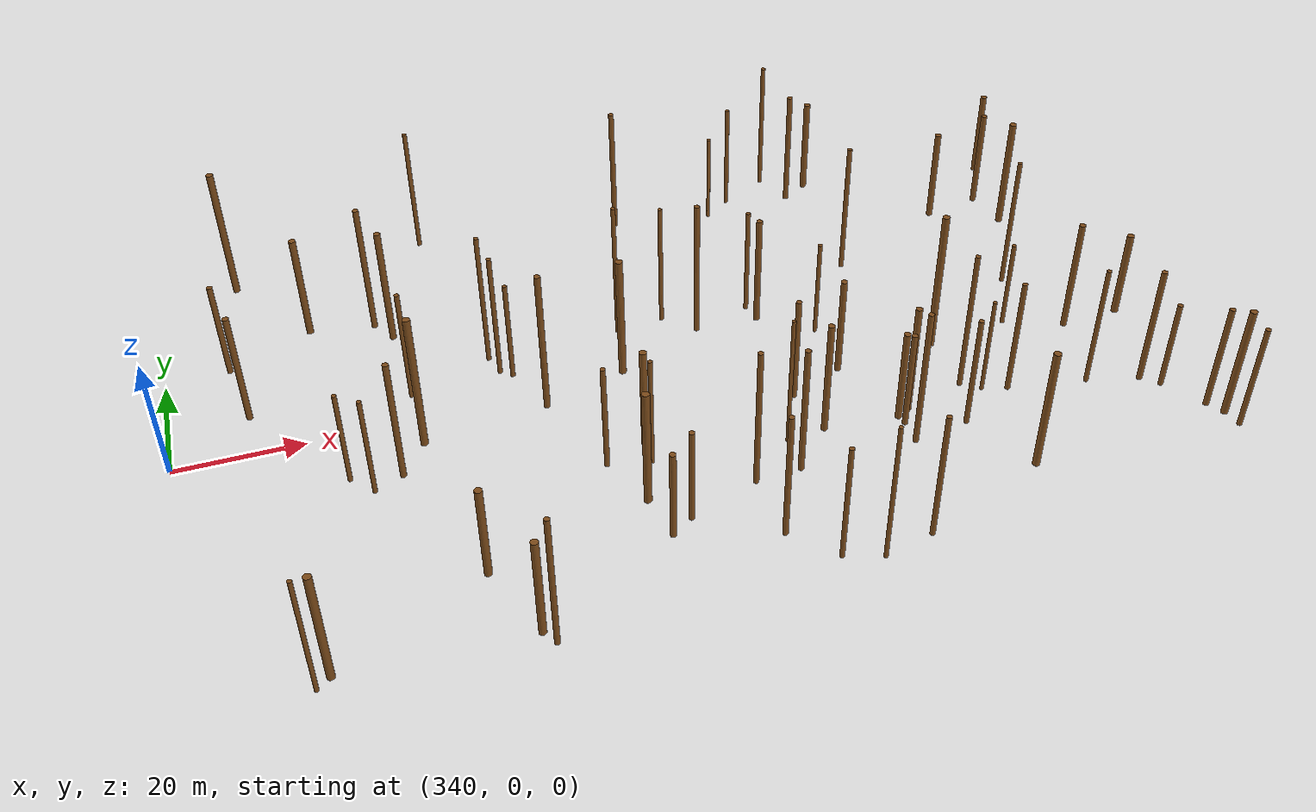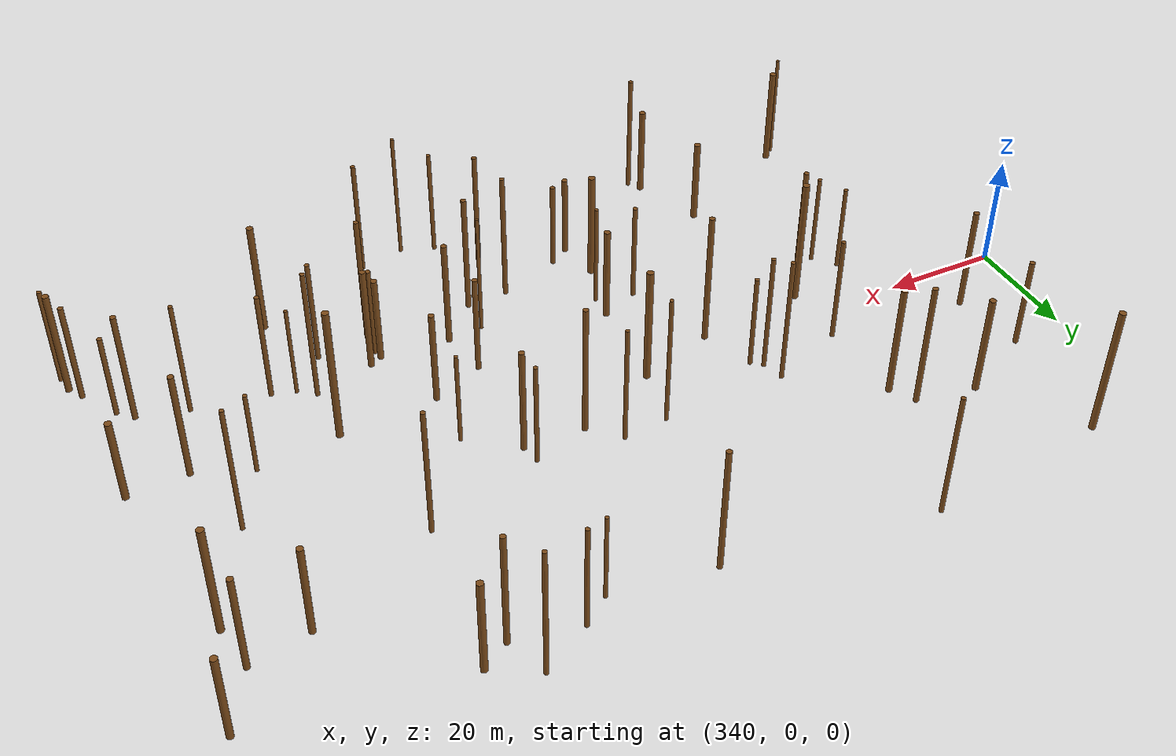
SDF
<sdf version="1.6">
 <world name="simple_forest">
  <include><uri>model://sun</uri></include>
  <model name="tree_2">
   <pose>427.7026014884177 -47.020278056192964 10.026776440516812 0 0 0</pose>
   <static>true</static>
   <link name="trunk">
    <collision name="collision">
     <geometry>
      <cylinder><radius>0.36559139244108096</radius><length>20.053552881033625</length></cylinder>
     </geometry>
    </collision>
    <visual name="visual">
     <geometry>
      <cylinder><radius>0.36559139244108096</radius><length>20.053552881033625</length></cylinder>
     </geometry>
     <material><ambient>0.5 0.3 0.1 1</ambient><diffuse>0.5 0.3 0.1 1</diffuse></material>
    </visual>
   </link>
  </model>
  <model name="tree_21">
   <pose>405.4065000889933 -28.067924084271667 10.047631468382322 0 0 0</pose>
   <static>true</static>
   <link name="trunk">
    <collision name="collision">
     <geometry>
      <cylinder><radius>0.599261281948533</radius><length>20.095262936764644</length></cylinder>
     </geometry>
    </collision>
    <visual name="visual">
     <geometry>
      <cylinder><radius>0.599261281948533</radius><length>20.095262936764644</length></cylinder>
     </geometry>
     <material><ambient>0.5 0.3 0.1 1</ambient><diffuse>0.5 0.3 0.1 1</diffuse></material>
    </visual>
   </link>
  </model>
  <model name="tree_27">
   <pose>459.18646926591435 45.38159275210802 8.816945253755454 0 0 0</pose>
   <static>true</static>
   <link name="trunk">
    <collision name="collision">
     <geometry>
      <cylinder><radius>0.5627558821134582</radius><length>17.63389050751091</length></cylinder>
     </geometry>
    </collision>
    <visual name="visual">
     <geometry>
      <cylinder><radius>0.5627558821134582</radius><length>17.63389050751091</length></cylinder>
     </geometry>
     <material><ambient>0.5 0.3 0.1 1</ambient><diffuse>0.5 0.3 0.1 1</diffuse></material>
    </visual>
   </link>
  </model>
  <model name="tree_35">
   <pose>480.529554317744 4.9803593494943925 11.862165205426287 0 0 0</pose>
   <static>true</static>
   <link name="trunk">
    <collision name="collision">
     <geometry>
      <cylinder><radius>0.3795169886820177</radius><length>23.724330410852573</length></cylinder>
     </geometry>
    </collision>
    <visual name="visual">
     <geometry>
      <cylinder><radius>0.3795169886820177</radius><length>23.724330410852573</length></cylinder>
     </geometry>
     <material><ambient>0.5 0.3 0.1 1</ambient><diffuse>0.5 0.3 0.1 1</diffuse></material>
    </visual>
   </link>
  </model>
  <model name="tree_36">
   <pose>428.90656079887805 -28.820179455791795 11.149655345449881 0 0 0</pose>
   <static>true</static>
   <link name="trunk">
    <collision name="collision">
     <geometry>
      <cylinder><radius>0.46178882663383747</radius><length>22.299310690899762</length></cylinder>
     </geometry>
    </collision>
    <visual name="visual">
     <geometry>
      <cylinder><radius>0.46178882663383747</radius><length>22.299310690899762</length></cylinder>
     </geometry>
     <material><ambient>0.5 0.3 0.1 1</ambient><diffuse>0.5 0.3 0.1 1</diffuse></material>
    </visual>
   </link>
  </model>
  <model name="tree_38">
   <pose>443.71908307535904 1.7575841035590614 8.623486685157786 0 0 0</pose>
   <static>true</static>
   <link name="trunk">
    <collision name="collision">
     <geometry>
      <cylinder><radius>0.3363012587604797</radius><length>17.246973370315573</length></cylinder>
     </geometry>
    </collision>
    <visual name="visual">
     <geometry>
      <cylinder><radius>0.3363012587604797</radius><length>17.246973370315573</length></cylinder>
     </geometry>
     <material><ambient>0.5 0.3 0.1 1</ambient><diffuse>0.5 0.3 0.1 1</diffuse></material>
    </visual>
   </link>
  </model>
  <model name="tree_43">
   <pose>477.94431604867617 28.461942429075336 8.452049571809388 0 0 0</pose>
   <static>true</static>
   <link name="trunk">
    <collision name="collision">
     <geometry>
      <cylinder><radius>0.542249099329993</radius><length>16.904099143618776</length></cylinder>
     </geometry>
    </collision>
    <visual name="visual">
     <geometry>
      <cylinder><radius>0.542249099329993</radius><length>16.904099143618776</length></cylinder>
     </geometry>
     <material><ambient>0.5 0.3 0.1 1</ambient><diffuse>0.5 0.3 0.1 1</diffuse></material>
    </visual>
   </link>
  </model>
  <model name="tree_46">
   <pose>408.5950692812461 -16.069739460503683 8.743281669601428 0 0 0</pose>
   <static>true</static>
   <link name="trunk">
    <collision name="collision">
     <geometry>
      <cylinder><radius>0.5585017609058374</radius><length>17.486563339202856</length></cylinder>
     </geometry>
    </collision>
    <visual name="visual">
     <geometry>
      <cylinder><radius>0.5585017609058374</radius><length>17.486563339202856</length></cylinder>
     </geometry>
     <material><ambient>0.5 0.3 0.1 1</ambient><diffuse>0.5 0.3 0.1 1</diffuse></material>
    </visual>
   </link>
  </model>
  <model name="tree_51">
   <pose>490.78471419621127 -28.625270080081833 7.793176999860894 0 0 0</pose>
   <static>true</static>
   <link name="trunk">
    <collision name="collision">
     <geometry>
      <cylinder><radius>0.42031208776483575</radius><length>15.586353999721789</length></cylinder>
     </geometry>
    </collision>
    <visual name="visual">
     <geometry>
      <cylinder><radius>0.42031208776483575</radius><length>15.586353999721789</length></cylinder>
     </geometry>
     <material><ambient>0.5 0.3 0.1 1</ambient><diffuse>0.5 0.3 0.1 1</diffuse></material>
    </visual>
   </link>
  </model>
  <model name="tree_52">
   <pose>385.18338778714696 48.5308843779726 11.420353009742847 0 0 0</pose>
   <static>true</static>
   <link name="trunk">
    <collision name="collision">
     <geometry>
      <cylinder><radius>0.37956091745164555</radius><length>22.840706019485694</length></cylinder>
     </geometry>
    </collision>
    <visual name="visual">
     <geometry>
      <cylinder><radius>0.37956091745164555</radius><length>22.840706019485694</length></cylinder>
     </geometry>
     <material><ambient>0.5 0.3 0.1 1</ambient><diffuse>0.5 0.3 0.1 1</diffuse></material>
    </visual>
   </link>
  </model>
  <model name="tree_53">
   <pose>460.4582836657519 -7.699251400983712 12.47711344746357 0 0 0</pose>
   <static>true</static>
   <link name="trunk">
    <collision name="collision">
     <geometry><cylinder><radius>0.587195292257902</radius><length>24.95422689492714</length></cylinder></geometry>
    </collision>
    <visual name="visual">
     <geometry><cylinder><radius>0.587195292257902</radius><length>24.95422689492714</length></cylinder></geometry>
     <material><ambient>0.5 0.3 0.1 1</ambient><diffuse>0.5 0.3 0.1 1</diffuse></material>
    </visual>
   </link>
  </model>
  <model name="tree_60">
   <pose>425.03266618251376 8.367228929122476 12.173531288682137 0 0 0</pose>
   <static>true</static>
   <link name="trunk">
    <collision name="collision">
     <geometry>
      <cylinder><radius>0.45683481465958764</radius><length>24.347062577364273</length></cylinder>
     </geometry>
    </collision>
    <visual name="visual">
     <geometry>
      <cylinder><radius>0.45683481465958764</radius><length>24.347062577364273</length></cylinder>
     </geometry>
     <material><ambient>0.5 0.3 0.1 1</ambient><diffuse>0.5 0.3 0.1 1</diffuse></material>
    </visual>
   </link>
  </model>
  <model name="tree_71">
   <pose>493.6465336278828 40.53364910793232 7.961492338563668 0 0 0</pose>
   <static>true</static>
   <link name="trunk">
    <collision name="collision">
     <geometry>
      <cylinder><radius>0.5538311139884566</radius><length>15.922984677127335</length></cylinder>
     </geometry>
    </collision>
    <visual name="visual">
     <geometry>
      <cylinder><radius>0.5538311139884566</radius><length>15.922984677127335</length></cylinder>
     </geometry>
     <material><ambient>0.5 0.3 0.1 1</ambient><diffuse>0.5 0.3 0.1 1</diffuse></material>
    </visual>
   </link>
  </model>
  <model name="tree_72">
   <pose>429.3400148380891 -22.331977602774835 11.355596115098136 0 0 0</pose>
   <static>true</static>
   <link name="trunk">
    <collision name="collision">
     <geometry>
      <cylinder><radius>0.3010637067263347</radius><length>22.71119223019627</length></cylinder>
     </geometry>
    </collision>
    <visual name="visual">
     <geometry>
      <cylinder><radius>0.3010637067263347</radius><length>22.71119223019627</length></cylinder>
     </geometry>
     <material><ambient>0.5 0.3 0.1 1</ambient><diffuse>0.5 0.3 0.1 1</diffuse></material>
    </visual>
   </link>
  </model>
  <model name="tree_74">
   <pose>433.41004979087256 -49.033030039166 11.915531966500716 0 0 0</pose>
   <static>true</static>
   <link name="trunk">
    <collision name="collision">
     <geometry>
      <cylinder><radius>0.3225731580221301</radius><length>23.83106393300143</length></cylinder>
     </geometry>
    </collision>
    <visual name="visual">
     <geometry>
      <cylinder><radius>0.3225731580221301</radius><length>23.83106393300143</length></cylinder>
     </geometry>
     <material><ambient>0.5 0.3 0.1 1</ambient><diffuse>0.5 0.3 0.1 1</diffuse></material>
    </visual>
   </link>
  </model>
  <model name="tree_79">
   <pose>412.31361593379563 12.066151015071277 12.149405078468373 0 0 0</pose>
   <static>true</static>
   <link name="trunk">
    <collision name="collision">
     <geometry>
      <cylinder><radius>0.3463660014996614</radius><length>24.298810156936746</length></cylinder>
     </geometry>
    </collision>
    <visual name="visual">
     <geometry>
      <cylinder><radius>0.3463660014996614</radius><length>24.298810156936746</length></cylinder>
     </geometry>
     <material><ambient>0.5 0.3 0.1 1</ambient><diffuse>0.5 0.3 0.1 1</diffuse></material>
    </visual>
   </link>
  </model>
  <model name="tree_91">
   <pose>391.3434790112799 7.6588043496599525 11.043926419170853 0 0 0</pose>
   <static>true</static>
   <link name="trunk">
    <collision name="collision">
     <geometry>
      <cylinder><radius>0.3764167518415746</radius><length>22.087852838341707</length></cylinder>
     </geometry>
    </collision>
    <visual name="visual">
     <geometry>
      <cylinder><radius>0.3764167518415746</radius><length>22.087852838341707</length></cylinder>
     </geometry>
     <material><ambient>0.5 0.3 0.1 1</ambient><diffuse>0.5 0.3 0.1 1</diffuse></material>
    </visual>
   </link>
  </model>
  <model name="tree_96">
   <pose>408.3763831871474 -20.434479747405298 9.60223166886454 0 0 0</pose>
   <static>true</static>
   <link name="trunk">
    <collision name="collision">
     <geometry><cylinder><radius>0.338186339717746</radius><length>19.20446333772908</length></cylinder></geometry>
    </collision>
    <visual name="visual">
     <geometry><cylinder><radius>0.338186339717746</radius><length>19.20446333772908</length></cylinder></geometry>
     <material><ambient>0.5 0.3 0.1 1</ambient><diffuse>0.5 0.3 0.1 1</diffuse></material>
    </visual>
   </link>
  </model>
  <model name="tree_99">
   <pose>435.5892684899363 7.9984781195681975 9.824940951235071 0 0 0</pose>
   <static>true</static>
   <link name="trunk">
    <collision name="collision">
     <geometry>
      <cylinder><radius>0.49641168711092143</radius><length>19.649881902470142</length></cylinder>
     </geometry>
    </collision>
    <visual name="visual">
     <geometry>
      <cylinder><radius>0.49641168711092143</radius><length>19.649881902470142</length></cylinder>
     </geometry>
     <material><ambient>0.5 0.3 0.1 1</ambient><diffuse>0.5 0.3 0.1 1</diffuse></material>
    </visual>
   </link>
  </model>
  <model name="tree_100">
   <pose>447.7382013117593 -28.629859901089972 12.005904129141271 0 0 0</pose>
   <static>true</static>
   <link name="trunk">
    <collision name="collision">
     <geometry>
      <cylinder><radius>0.44195585577279783</radius><length>24.011808258282542</length></cylinder>
     </geometry>
    </collision>
    <visual name="visual">
     <geometry>
      <cylinder><radius>0.44195585577279783</radius><length>24.011808258282542</length></cylinder>
     </geometry>
     <material><ambient>0.5 0.3 0.1 1</ambient><diffuse>0.5 0.3 0.1 1</diffuse></material>
    </visual>
   </link>
  </model>
  <model name="tree_105">
   <pose>420.29660088774216 12.976538073771373 10.981771252452525 0 0 0</pose>
   <static>true</static>
   <link name="trunk">
    <collision name="collision">
     <geometry>
      <cylinder><radius>0.3583305710219128</radius><length>21.96354250490505</length></cylinder>
     </geometry>
    </collision>
    <visual name="visual">
     <geometry>
      <cylinder><radius>0.3583305710219128</radius><length>21.96354250490505</length></cylinder>
     </geometry>
     <material><ambient>0.5 0.3 0.1 1</ambient><diffuse>0.5 0.3 0.1 1</diffuse></material>
    </visual>
   </link>
  </model>
  <model name="tree_113">
   <pose>479.9276924548228 -24.080845153498064 10.68830718388078 0 0 0</pose>
   <static>true</static>
   <link name="trunk">
    <collision name="collision">
     <geometry>
      <cylinder><radius>0.37417192125289783</radius><length>21.37661436776156</length></cylinder>
     </geometry>
    </collision>
    <visual name="visual">
     <geometry>
      <cylinder><radius>0.37417192125289783</radius><length>21.37661436776156</length></cylinder>
     </geometry>
     <material><ambient>0.5 0.3 0.1 1</ambient><diffuse>0.5 0.3 0.1 1</diffuse></material>
    </visual>
   </link>
  </model>
  <model name="tree_118">
   <pose>421.6164917621244 -29.316561048558974 12.024192391700884 0 0 0</pose>
   <static>true</static>
   <link name="trunk">
    <collision name="collision">
     <geometry>
      <cylinder><radius>0.4260430553320277</radius><length>24.04838478340177</length></cylinder>
     </geometry>
    </collision>
    <visual name="visual">
     <geometry>
      <cylinder><radius>0.4260430553320277</radius><length>24.04838478340177</length></cylinder>
     </geometry>
     <material><ambient>0.5 0.3 0.1 1</ambient><diffuse>0.5 0.3 0.1 1</diffuse></material>
    </visual>
   </link>
  </model>
  <model name="tree_120">
   <pose>386.57721863843454 -49.41039164160069 11.267375625296928 0 0 0</pose>
   <static>true</static>
   <link name="trunk">
    <collision name="collision">
     <geometry>
      <cylinder><radius>0.4055276408015474</radius><length>22.534751250593857</length></cylinder>
     </geometry>
    </collision>
    <visual name="visual">
     <geometry>
      <cylinder><radius>0.4055276408015474</radius><length>22.534751250593857</length></cylinder>
     </geometry>
     <material><ambient>0.5 0.3 0.1 1</ambient><diffuse>0.5 0.3 0.1 1</diffuse></material>
    </visual>
   </link>
  </model>
  <model name="tree_123">
   <pose>441.47761628617025 -47.097518005328475 10.89570942514175 0 0 0</pose>
   <static>true</static>
   <link name="trunk">
    <collision name="collision">
     <geometry><cylinder><radius>0.4008388631095147</radius><length>21.7914188502835</length></cylinder></geometry>
    </collision>
    <visual name="visual">
     <geometry><cylinder><radius>0.4008388631095147</radius><length>21.7914188502835</length></cylinder></geometry>
     <material><ambient>0.5 0.3 0.1 1</ambient><diffuse>0.5 0.3 0.1 1</diffuse></material>
    </visual>
   </link>
  </model>
  <model name="tree_124">
   <pose>410.2735024462607 -33.49552687964912 8.138138986405803 0 0 0</pose>
   <static>true</static>
   <link name="trunk">
    <collision name="collision">
     <geometry>
      <cylinder><radius>0.44021704476969303</radius><length>16.276277972811606</length></cylinder>
     </geometry>
    </collision>
    <visual name="visual">
     <geometry>
      <cylinder><radius>0.44021704476969303</radius><length>16.276277972811606</length></cylinder>
     </geometry>
     <material><ambient>0.5 0.3 0.1 1</ambient><diffuse>0.5 0.3 0.1 1</diffuse></material>
    </visual>
   </link>
  </model>
  <model name="tree_140">
   <pose>434.094233102397 -12.942912378194379 9.206155874306416 0 0 0</pose>
   <static>true</static>
   <link name="trunk">
    <collision name="collision">
     <geometry>
      <cylinder><radius>0.45178823690312336</radius><length>18.412311748612833</length></cylinder>
     </geometry>
    </collision>
    <visual name="visual">
     <geometry>
      <cylinder><radius>0.45178823690312336</radius><length>18.412311748612833</length></cylinder>
     </geometry>
     <material><ambient>0.5 0.3 0.1 1</ambient><diffuse>0.5 0.3 0.1 1</diffuse></material>
    </visual>
   </link>
  </model>
  <model name="tree_147">
   <pose>385.1994110869814 -47.13000022299104 8.409199285788459 0 0 0</pose>
   <static>true</static>
   <link name="trunk">
    <collision name="collision">
     <geometry>
      <cylinder><radius>0.5552858508937377</radius><length>16.818398571576918</length></cylinder>
     </geometry>
    </collision>
    <visual name="visual">
     <geometry>
      <cylinder><radius>0.5552858508937377</radius><length>16.818398571576918</length></cylinder>
     </geometry>
     <material><ambient>0.5 0.3 0.1 1</ambient><diffuse>0.5 0.3 0.1 1</diffuse></material>
    </visual>
   </link>
  </model>
  <model name="tree_157">
   <pose>489.3566013405816 22.458500109305163 10.12318434554304 0 0 0</pose>
   <static>true</static>
   <link name="trunk">
    <collision name="collision">
     <geometry><cylinder><radius>0.592982106864917</radius><length>20.24636869108608</length></cylinder></geometry>
    </collision>
    <visual name="visual">
     <geometry><cylinder><radius>0.592982106864917</radius><length>20.24636869108608</length></cylinder></geometry>
     <material><ambient>0.5 0.3 0.1 1</ambient><diffuse>0.5 0.3 0.1 1</diffuse></material>
    </visual>
   </link>
  </model>
  <model name="tree_162">
   <pose>474.7029754812051 -5.953120186398976 7.7568835859178895 0 0 0</pose>
   <static>true</static>
   <link name="trunk">
    <collision name="collision">
     <geometry>
      <cylinder><radius>0.3553091011170245</radius><length>15.513767171835779</length></cylinder>
     </geometry>
    </collision>
    <visual name="visual">
     <geometry>
      <cylinder><radius>0.3553091011170245</radius><length>15.513767171835779</length></cylinder>
     </geometry>
     <material><ambient>0.5 0.3 0.1 1</ambient><diffuse>0.5 0.3 0.1 1</diffuse></material>
    </visual>
   </link>
  </model>
  <model name="tree_184">
   <pose>496.80854416910324 -40.87575937061728 9.16654196832546 0 0 0</pose>
   <static>true</static>
   <link name="trunk">
    <collision name="collision">
     <geometry>
      <cylinder><radius>0.4043883168883951</radius><length>18.33308393665092</length></cylinder>
     </geometry>
    </collision>
    <visual name="visual">
     <geometry>
      <cylinder><radius>0.4043883168883951</radius><length>18.33308393665092</length></cylinder>
     </geometry>
     <material><ambient>0.5 0.3 0.1 1</ambient><diffuse>0.5 0.3 0.1 1</diffuse></material>
    </visual>
   </link>
  </model>
  <model name="tree_187">
   <pose>460.27764951571214 -18.548284282983207 12.350923634042886 0 0 0</pose>
   <static>true</static>
   <link name="trunk">
    <collision name="collision">
     <geometry>
      <cylinder><radius>0.3969821358827984</radius><length>24.70184726808577</length></cylinder>
     </geometry>
    </collision>
    <visual name="visual">
     <geometry>
      <cylinder><radius>0.3969821358827984</radius><length>24.70184726808577</length></cylinder>
     </geometry>
     <material><ambient>0.5 0.3 0.1 1</ambient><diffuse>0.5 0.3 0.1 1</diffuse></material>
    </visual>
   </link>
  </model>
  <model name="tree_188">
   <pose>410.1333064307382 1.4596252329105113 10.788301932415646 0 0 0</pose>
   <static>true</static>
   <link name="trunk">
    <collision name="collision">
     <geometry>
      <cylinder><radius>0.5964357644345262</radius><length>21.57660386483129</length></cylinder>
     </geometry>
    </collision>
    <visual name="visual">
     <geometry>
      <cylinder><radius>0.5964357644345262</radius><length>21.57660386483129</length></cylinder>
     </geometry>
     <material><ambient>0.5 0.3 0.1 1</ambient><diffuse>0.5 0.3 0.1 1</diffuse></material>
    </visual>
   </link>
  </model>
  <model name="tree_199">
   <pose>420.7929993158317 43.42483936825201 11.602747365927891 0 0 0</pose>
   <static>true</static>
   <link name="trunk">
    <collision name="collision">
     <geometry>
      <cylinder><radius>0.45232130274289695</radius><length>23.205494731855783</length></cylinder>
     </geometry>
    </collision>
    <visual name="visual">
     <geometry>
      <cylinder><radius>0.45232130274289695</radius><length>23.205494731855783</length></cylinder>
     </geometry>
     <material><ambient>0.5 0.3 0.1 1</ambient><diffuse>0.5 0.3 0.1 1</diffuse></material>
    </visual>
   </link>
  </model>
  <model name="tree_201">
   <pose>494.743943189144 -35.140458161721085 9.225619708465038 0 0 0</pose>
   <static>true</static>
   <link name="trunk">
    <collision name="collision">
     <geometry>
      <cylinder><radius>0.46157417331116213</radius><length>18.451239416930076</length></cylinder>
     </geometry>
    </collision>
    <visual name="visual">
     <geometry>
      <cylinder><radius>0.46157417331116213</radius><length>18.451239416930076</length></cylinder>
     </geometry>
     <material><ambient>0.5 0.3 0.1 1</ambient><diffuse>0.5 0.3 0.1 1</diffuse></material>
    </visual>
   </link>
  </model>
  <model name="tree_222">
   <pose>352.1099681986509 8.75717051264214 9.62154469230449 0 0 0</pose>
   <static>true</static>
   <link name="trunk">
    <collision name="collision">
     <geometry>
      <cylinder><radius>0.49168161070800365</radius><length>19.24308938460898</length></cylinder>
     </geometry>
    </collision>
    <visual name="visual">
     <geometry>
      <cylinder><radius>0.49168161070800365</radius><length>19.24308938460898</length></cylinder>
     </geometry>
     <material><ambient>0.5 0.3 0.1 1</ambient><diffuse>0.5 0.3 0.1 1</diffuse></material>
    </visual>
   </link>
  </model>
  <model name="tree_224">
   <pose>488.3759804486239 -26.279429807242536 10.374059650893226 0 0 0</pose>
   <static>true</static>
   <link name="trunk">
    <collision name="collision">
     <geometry>
      <cylinder><radius>0.47157680770522165</radius><length>20.748119301786453</length></cylinder>
     </geometry>
    </collision>
    <visual name="visual">
     <geometry>
      <cylinder><radius>0.47157680770522165</radius><length>20.748119301786453</length></cylinder>
     </geometry>
     <material><ambient>0.5 0.3 0.1 1</ambient><diffuse>0.5 0.3 0.1 1</diffuse></material>
    </visual>
   </link>
  </model>
  <model name="tree_248">
   <pose>494.4535674117184 -9.188411430229948 7.663581434275234 0 0 0</pose>
   <static>true</static>
   <link name="trunk">
    <collision name="collision">
     <geometry>
      <cylinder><radius>0.5854564576143177</radius><length>15.327162868550468</length></cylinder>
     </geometry>
    </collision>
    <visual name="visual">
     <geometry>
      <cylinder><radius>0.5854564576143177</radius><length>15.327162868550468</length></cylinder>
     </geometry>
     <material><ambient>0.5 0.3 0.1 1</ambient><diffuse>0.5 0.3 0.1 1</diffuse></material>
    </visual>
   </link>
  </model>
  <model name="tree_249">
   <pose>376.82465914709104 -5.661691393929836 11.777250966529774 0 0 0</pose>
   <static>true</static>
   <link name="trunk">
    <collision name="collision">
     <geometry>
      <cylinder><radius>0.585166550955428</radius><length>23.554501933059548</length></cylinder>
     </geometry>
    </collision>
    <visual name="visual">
     <geometry>
      <cylinder><radius>0.585166550955428</radius><length>23.554501933059548</length></cylinder>
     </geometry>
     <material><ambient>0.5 0.3 0.1 1</ambient><diffuse>0.5 0.3 0.1 1</diffuse></material>
    </visual>
   </link>
  </model>
  <model name="tree_251">
   <pose>365.08710280019477 -10.18603572556269 8.110798595436318 0 0 0</pose>
   <static>true</static>
   <link name="trunk">
    <collision name="collision">
     <geometry>
      <cylinder><radius>0.35694256864832385</radius><length>16.221597190872636</length></cylinder>
     </geometry>
    </collision>
    <visual name="visual">
     <geometry>
      <cylinder><radius>0.35694256864832385</radius><length>16.221597190872636</length></cylinder>
     </geometry>
     <material><ambient>0.5 0.3 0.1 1</ambient><diffuse>0.5 0.3 0.1 1</diffuse></material>
    </visual>
   </link>
  </model>
  <model name="tree_264">
   <pose>484.19209188837965 -9.838274548743954 9.951344270721126 0 0 0</pose>
   <static>true</static>
   <link name="trunk">
    <collision name="collision">
     <geometry>
      <cylinder><radius>0.5058292488186698</radius><length>19.902688541442252</length></cylinder>
     </geometry>
    </collision>
    <visual name="visual">
     <geometry>
      <cylinder><radius>0.5058292488186698</radius><length>19.902688541442252</length></cylinder>
     </geometry>
     <material><ambient>0.5 0.3 0.1 1</ambient><diffuse>0.5 0.3 0.1 1</diffuse></material>
    </visual>
   </link>
  </model>
  <model name="tree_270">
   <pose>457.03936680562873 -27.15064256354156 9.767494514537237 0 0 0</pose>
   <static>true</static>
   <link name="trunk">
    <collision name="collision">
     <geometry>
      <cylinder><radius>0.40167948565055256</radius><length>19.534989029074474</length></cylinder>
     </geometry>
    </collision>
    <visual name="visual">
     <geometry>
      <cylinder><radius>0.40167948565055256</radius><length>19.534989029074474</length></cylinder>
     </geometry>
     <material><ambient>0.5 0.3 0.1 1</ambient><diffuse>0.5 0.3 0.1 1</diffuse></material>
    </visual>
   </link>
  </model>
  <model name="tree_271">
   <pose>421.8297537588803 -40.49141607243691 10.825539315301544 0 0 0</pose>
   <static>true</static>
   <link name="trunk">
    <collision name="collision">
     <geometry>
      <cylinder><radius>0.4280292018782874</radius><length>21.651078630603088</length></cylinder>
     </geometry>
    </collision>
    <visual name="visual">
     <geometry>
      <cylinder><radius>0.4280292018782874</radius><length>21.651078630603088</length></cylinder>
     </geometry>
     <material><ambient>0.5 0.3 0.1 1</ambient><diffuse>0.5 0.3 0.1 1</diffuse></material>
    </visual>
   </link>
  </model>
  <model name="tree_272">
   <pose>380.5580132011815 -34.73610752312762 7.835666540683238 0 0 0</pose>
   <static>true</static>
   <link name="trunk">
    <collision name="collision">
     <geometry>
      <cylinder><radius>0.5768955107203153</radius><length>15.671333081366477</length></cylinder>
     </geometry>
    </collision>
    <visual name="visual">
     <geometry>
      <cylinder><radius>0.5768955107203153</radius><length>15.671333081366477</length></cylinder>
     </geometry>
     <material><ambient>0.5 0.3 0.1 1</ambient><diffuse>0.5 0.3 0.1 1</diffuse></material>
    </visual>
   </link>
  </model>
  <model name="tree_279">
   <pose>373.8854401091967 26.260563193684973 11.536106855761723 0 0 0</pose>
   <static>true</static>
   <link name="trunk">
    <collision name="collision">
     <geometry>
      <cylinder><radius>0.4722300012994388</radius><length>23.072213711523446</length></cylinder>
     </geometry>
    </collision>
    <visual name="visual">
     <geometry>
      <cylinder><radius>0.4722300012994388</radius><length>23.072213711523446</length></cylinder>
     </geometry>
     <material><ambient>0.5 0.3 0.1 1</ambient><diffuse>0.5 0.3 0.1 1</diffuse></material>
    </visual>
   </link>
  </model>
  <model name="tree_284">
   <pose>406.7765005595204 -35.812534584873134 7.65328549190453 0 0 0</pose>
   <static>true</static>
   <link name="trunk">
    <collision name="collision">
     <geometry>
      <cylinder><radius>0.48995160379665414</radius><length>15.30657098380906</length></cylinder>
     </geometry>
    </collision>
    <visual name="visual">
     <geometry>
      <cylinder><radius>0.48995160379665414</radius><length>15.30657098380906</length></cylinder>
     </geometry>
     <material><ambient>0.5 0.3 0.1 1</ambient><diffuse>0.5 0.3 0.1 1</diffuse></material>
    </visual>
   </link>
  </model>
  <model name="tree_286">
   <pose>376.35256155223385 22.159596774267314 10.337967783071987 0 0 0</pose>
   <static>true</static>
   <link name="trunk">
    <collision name="collision">
     <geometry>
      <cylinder><radius>0.5330506859900223</radius><length>20.675935566143973</length></cylinder>
     </geometry>
    </collision>
    <visual name="visual">
     <geometry>
      <cylinder><radius>0.5330506859900223</radius><length>20.675935566143973</length></cylinder>
     </geometry>
     <material><ambient>0.5 0.3 0.1 1</ambient><diffuse>0.5 0.3 0.1 1</diffuse></material>
    </visual>
   </link>
  </model>
  <model name="tree_289">
   <pose>447.62374483080134 -22.683315563523053 8.069087540551008 0 0 0</pose>
   <static>true</static>
   <link name="trunk">
    <collision name="collision">
     <geometry>
      <cylinder><radius>0.5264829431005111</radius><length>16.138175081102016</length></cylinder>
     </geometry>
    </collision>
    <visual name="visual">
     <geometry>
      <cylinder><radius>0.5264829431005111</radius><length>16.138175081102016</length></cylinder>
     </geometry>
     <material><ambient>0.5 0.3 0.1 1</ambient><diffuse>0.5 0.3 0.1 1</diffuse></material>
    </visual>
   </link>
  </model>
  <model name="tree_290">
   <pose>435.6144970639115 -21.675352991955066 9.933163766821254 0 0 0</pose>
   <static>true</static>
   <link name="trunk">
    <collision name="collision">
     <geometry>
      <cylinder><radius>0.5035458764280398</radius><length>19.866327533642508</length></cylinder>
     </geometry>
    </collision>
    <visual name="visual">
     <geometry>
      <cylinder><radius>0.5035458764280398</radius><length>19.866327533642508</length></cylinder>
     </geometry>
     <material><ambient>0.5 0.3 0.1 1</ambient><diffuse>0.5 0.3 0.1 1</diffuse></material>
    </visual>
   </link>
  </model>
  <model name="tree_301">
   <pose>401.8090298907396 -18.972543816413868 9.16534311246566 0 0 0</pose>
   <static>true</static>
   <link name="trunk">
    <collision name="collision">
     <geometry>
      <cylinder><radius>0.4018539843445392</radius><length>18.33068622493132</length></cylinder>
     </geometry>
    </collision>
    <visual name="visual">
     <geometry>
      <cylinder><radius>0.4018539843445392</radius><length>18.33068622493132</length></cylinder>
     </geometry>
     <material><ambient>0.5 0.3 0.1 1</ambient><diffuse>0.5 0.3 0.1 1</diffuse></material>
    </visual>
   </link>
  </model>
  <model name="tree_307">
   <pose>454.41620442511237 42.41542583856594 10.676491595302966 0 0 0</pose>
   <static>true</static>
   <link name="trunk">
    <collision name="collision">
     <geometry>
      <cylinder><radius>0.46934753502083976</radius><length>21.352983190605933</length></cylinder>
     </geometry>
    </collision>
    <visual name="visual">
     <geometry>
      <cylinder><radius>0.46934753502083976</radius><length>21.352983190605933</length></cylinder>
     </geometry>
     <material><ambient>0.5 0.3 0.1 1</ambient><diffuse>0.5 0.3 0.1 1</diffuse></material>
    </visual>
   </link>
  </model>
  <model name="tree_316">
   <pose>350.00339807988496 21.431554916746265 8.362794557181825 0 0 0</pose>
   <static>true</static>
   <link name="trunk">
    <collision name="collision">
     <geometry>
      <cylinder><radius>0.4513647004502872</radius><length>16.72558911436365</length></cylinder>
     </geometry>
    </collision>
    <visual name="visual">
     <geometry>
      <cylinder><radius>0.4513647004502872</radius><length>16.72558911436365</length></cylinder>
     </geometry>
     <material><ambient>0.5 0.3 0.1 1</ambient><diffuse>0.5 0.3 0.1 1</diffuse></material>
    </visual>
   </link>
  </model>
  <model name="tree_327">
   <pose>368.20981538331677 -13.74023310179556 8.5709633060445 0 0 0</pose>
   <static>true</static>
   <link name="trunk">
    <collision name="collision">
     <geometry><cylinder><radius>0.3540788768630534</radius><length>17.141926612089</length></cylinder></geometry>
    </collision>
    <visual name="visual">
     <geometry><cylinder><radius>0.3540788768630534</radius><length>17.141926612089</length></cylinder></geometry>
     <material><ambient>0.5 0.3 0.1 1</ambient><diffuse>0.5 0.3 0.1 1</diffuse></material>
    </visual>
   </link>
  </model>
  <model name="tree_333">
   <pose>443.2966710869633 -8.914138850346653 8.687651007234624 0 0 0</pose>
   <static>true</static>
   <link name="trunk">
    <collision name="collision">
     <geometry>
      <cylinder><radius>0.5029088766565598</radius><length>17.37530201446925</length></cylinder>
     </geometry>
    </collision>
    <visual name="visual">
     <geometry>
      <cylinder><radius>0.5029088766565598</radius><length>17.37530201446925</length></cylinder>
     </geometry>
     <material><ambient>0.5 0.3 0.1 1</ambient><diffuse>0.5 0.3 0.1 1</diffuse></material>
    </visual>
   </link>
  </model>
  <model name="tree_334">
   <pose>449.7567227072229 -21.507206743664177 9.744639815166702 0 0 0</pose>
   <static>true</static>
   <link name="trunk">
    <collision name="collision">
     <geometry>
      <cylinder><radius>0.5245609554286309</radius><length>19.489279630333403</length></cylinder>
     </geometry>
    </collision>
    <visual name="visual">
     <geometry>
      <cylinder><radius>0.5245609554286309</radius><length>19.489279630333403</length></cylinder>
     </geometry>
     <material><ambient>0.5 0.3 0.1 1</ambient><diffuse>0.5 0.3 0.1 1</diffuse></material>
    </visual>
   </link>
  </model>
  <model name="tree_337">
   <pose>467.0631786565793 -21.822826729622456 10.137298942307414 0 0 0</pose>
   <static>true</static>
   <link name="trunk">
    <collision name="collision">
     <geometry>
      <cylinder><radius>0.4145617302572131</radius><length>20.274597884614828</length></cylinder>
     </geometry>
    </collision>
    <visual name="visual">
     <geometry>
      <cylinder><radius>0.4145617302572131</radius><length>20.274597884614828</length></cylinder>
     </geometry>
     <material><ambient>0.5 0.3 0.1 1</ambient><diffuse>0.5 0.3 0.1 1</diffuse></material>
    </visual>
   </link>
  </model>
  <model name="tree_342">
   <pose>443.097834593031 44.641326301176065 9.755639951103545 0 0 0</pose>
   <static>true</static>
   <link name="trunk">
    <collision name="collision">
     <geometry>
      <cylinder><radius>0.3666114020720942</radius><length>19.51127990220709</length></cylinder>
     </geometry>
    </collision>
    <visual name="visual">
     <geometry>
      <cylinder><radius>0.3666114020720942</radius><length>19.51127990220709</length></cylinder>
     </geometry>
     <material><ambient>0.5 0.3 0.1 1</ambient><diffuse>0.5 0.3 0.1 1</diffuse></material>
    </visual>
   </link>
  </model>
  <model name="tree_343">
   <pose>356.0892273572624 -47.332980919706145 10.010035573466176 0 0 0</pose>
   <static>true</static>
   <link name="trunk">
    <collision name="collision">
     <geometry>
      <cylinder><radius>0.3159770661513223</radius><length>20.020071146932352</length></cylinder>
     </geometry>
    </collision>
    <visual name="visual">
     <geometry>
      <cylinder><radius>0.3159770661513223</radius><length>20.020071146932352</length></cylinder>
     </geometry>
     <material><ambient>0.5 0.3 0.1 1</ambient><diffuse>0.5 0.3 0.1 1</diffuse></material>
    </visual>
   </link>
  </model>
  <model name="tree_351">
   <pose>462.5424804700842 -38.9142104709985 10.483695214094734 0 0 0</pose>
   <static>true</static>
   <link name="trunk">
    <collision name="collision">
     <geometry>
      <cylinder><radius>0.5715440656985995</radius><length>20.967390428189468</length></cylinder>
     </geometry>
    </collision>
    <visual name="visual">
     <geometry>
      <cylinder><radius>0.5715440656985995</radius><length>20.967390428189468</length></cylinder>
     </geometry>
     <material><ambient>0.5 0.3 0.1 1</ambient><diffuse>0.5 0.3 0.1 1</diffuse></material>
    </visual>
   </link>
  </model>
  <model name="tree_353">
   <pose>434.9465041723004 11.480958277595064 9.582837976042699 0 0 0</pose>
   <static>true</static>
   <link name="trunk">
    <collision name="collision">
     <geometry>
      <cylinder><radius>0.37216927164196306</radius><length>19.165675952085397</length></cylinder>
     </geometry>
    </collision>
    <visual name="visual">
     <geometry>
      <cylinder><radius>0.37216927164196306</radius><length>19.165675952085397</length></cylinder>
     </geometry>
     <material><ambient>0.5 0.3 0.1 1</ambient><diffuse>0.5 0.3 0.1 1</diffuse></material>
    </visual>
   </link>
  </model>
  <model name="tree_356">
   <pose>396.54919523446347 -2.986492184151402 12.4051971127578 0 0 0</pose>
   <static>true</static>
   <link name="trunk">
    <collision name="collision">
     <geometry><cylinder><radius>0.490701237440589</radius><length>24.8103942255156</length></cylinder></geometry>
    </collision>
    <visual name="visual">
     <geometry><cylinder><radius>0.490701237440589</radius><length>24.8103942255156</length></cylinder></geometry>
     <material><ambient>0.5 0.3 0.1 1</ambient><diffuse>0.5 0.3 0.1 1</diffuse></material>
    </visual>
   </link>
  </model>
  <model name="tree_362">
   <pose>463.1027816728797 -20.655742882496874 8.497349168575942 0 0 0</pose>
   <static>true</static>
   <link name="trunk">
    <collision name="collision">
     <geometry>
      <cylinder><radius>0.3131418826977369</radius><length>16.994698337151885</length></cylinder>
     </geometry>
    </collision>
    <visual name="visual">
     <geometry>
      <cylinder><radius>0.3131418826977369</radius><length>16.994698337151885</length></cylinder>
     </geometry>
     <material><ambient>0.5 0.3 0.1 1</ambient><diffuse>0.5 0.3 0.1 1</diffuse></material>
    </visual>
   </link>
  </model>
  <model name="tree_365">
   <pose>363.40443427500975 28.084156697842502 9.159623431906724 0 0 0</pose>
   <static>true</static>
   <link name="trunk">
    <collision name="collision">
     <geometry>
      <cylinder><radius>0.5597394831234173</radius><length>18.319246863813447</length></cylinder>
     </geometry>
    </collision>
    <visual name="visual">
     <geometry>
      <cylinder><radius>0.5597394831234173</radius><length>18.319246863813447</length></cylinder>
     </geometry>
     <material><ambient>0.5 0.3 0.1 1</ambient><diffuse>0.5 0.3 0.1 1</diffuse></material>
    </visual>
   </link>
  </model>
  <model name="tree_372">
   <pose>358.0315139342722 -45.76448371498705 9.262796551542412 0 0 0</pose>
   <static>true</static>
   <link name="trunk">
    <collision name="collision">
     <geometry>
      <cylinder><radius>0.5610111525169177</radius><length>18.525593103084823</length></cylinder>
     </geometry>
    </collision>
    <visual name="visual">
     <geometry>
      <cylinder><radius>0.5610111525169177</radius><length>18.525593103084823</length></cylinder>
     </geometry>
     <material><ambient>0.5 0.3 0.1 1</ambient><diffuse>0.5 0.3 0.1 1</diffuse></material>
    </visual>
   </link>
  </model>
  <model name="tree_377">
   <pose>372.6651883760771 -11.71455983112223 10.525474144273927 0 0 0</pose>
   <static>true</static>
   <link name="trunk">
    <collision name="collision">
     <geometry>
      <cylinder><radius>0.47017339251723583</radius><length>21.050948288547854</length></cylinder>
     </geometry>
    </collision>
    <visual name="visual">
     <geometry>
      <cylinder><radius>0.47017339251723583</radius><length>21.050948288547854</length></cylinder>
     </geometry>
     <material><ambient>0.5 0.3 0.1 1</ambient><diffuse>0.5 0.3 0.1 1</diffuse></material>
    </visual>
   </link>
  </model>
  <model name="tree_381">
   <pose>393.1175062388708 6.167271075964706 8.801448855699517 0 0 0</pose>
   <static>true</static>
   <link name="trunk">
    <collision name="collision">
     <geometry>
      <cylinder><radius>0.3785330029762487</radius><length>17.602897711399034</length></cylinder>
     </geometry>
    </collision>
    <visual name="visual">
     <geometry>
      <cylinder><radius>0.3785330029762487</radius><length>17.602897711399034</length></cylinder>
     </geometry>
     <material><ambient>0.5 0.3 0.1 1</ambient><diffuse>0.5 0.3 0.1 1</diffuse></material>
    </visual>
   </link>
  </model>
  <model name="tree_382">
   <pose>451.81038128156 49.63651121547608 12.082394547709406 0 0 0</pose>
   <static>true</static>
   <link name="trunk">
    <collision name="collision">
     <geometry>
      <cylinder><radius>0.3856730633094474</radius><length>24.16478909541881</length></cylinder>
     </geometry>
    </collision>
    <visual name="visual">
     <geometry>
      <cylinder><radius>0.3856730633094474</radius><length>24.16478909541881</length></cylinder>
     </geometry>
     <material><ambient>0.5 0.3 0.1 1</ambient><diffuse>0.5 0.3 0.1 1</diffuse></material>
    </visual>
   </link>
  </model>
  <model name="tree_383">
   <pose>496.2881933016819 -37.73625780960291 9.760213426226986 0 0 0</pose>
   <static>true</static>
   <link name="trunk">
    <collision name="collision">
     <geometry>
      <cylinder><radius>0.5558478871152968</radius><length>19.520426852453973</length></cylinder>
     </geometry>
    </collision>
    <visual name="visual">
     <geometry>
      <cylinder><radius>0.5558478871152968</radius><length>19.520426852453973</length></cylinder>
     </geometry>
     <material><ambient>0.5 0.3 0.1 1</ambient><diffuse>0.5 0.3 0.1 1</diffuse></material>
    </visual>
   </link>
  </model>
  <model name="tree_393">
   <pose>455.47475070636614 18.010899064958096 11.889800758252058 0 0 0</pose>
   <static>true</static>
   <link name="trunk">
    <collision name="collision">
     <geometry>
      <cylinder><radius>0.4033544342108099</radius><length>23.779601516504115</length></cylinder>
     </geometry>
    </collision>
    <visual name="visual">
     <geometry>
      <cylinder><radius>0.4033544342108099</radius><length>23.779601516504115</length></cylinder>
     </geometry>
     <material><ambient>0.5 0.3 0.1 1</ambient><diffuse>0.5 0.3 0.1 1</diffuse></material>
    </visual>
   </link>
  </model>
  <model name="tree_395">
   <pose>438.29210361715513 41.07122709468874 8.12080560319506 0 0 0</pose>
   <static>true</static>
   <link name="trunk">
    <collision name="collision">
     <geometry>
      <cylinder><radius>0.31662385500533313</radius><length>16.24161120639012</length></cylinder>
     </geometry>
    </collision>
    <visual name="visual">
     <geometry>
      <cylinder><radius>0.31662385500533313</radius><length>16.24161120639012</length></cylinder>
     </geometry>
     <material><ambient>0.5 0.3 0.1 1</ambient><diffuse>0.5 0.3 0.1 1</diffuse></material>
    </visual>
   </link>
  </model>
  <model name="tree_397">
   <pose>352.56285151845435 44.09040549315347 11.729668530779328 0 0 0</pose>
   <static>true</static>
   <link name="trunk">
    <collision name="collision">
     <geometry>
      <cylinder><radius>0.5684777750463372</radius><length>23.459337061558657</length></cylinder>
     </geometry>
    </collision>
    <visual name="visual">
     <geometry>
      <cylinder><radius>0.5684777750463372</radius><length>23.459337061558657</length></cylinder>
     </geometry>
     <material><ambient>0.5 0.3 0.1 1</ambient><diffuse>0.5 0.3 0.1 1</diffuse></material>
    </visual>
   </link>
  </model>
  <model name="tree_405">
   <pose>488.11536999366524 30.468815421573296 8.987169357148712 0 0 0</pose>
   <static>true</static>
   <link name="trunk">
    <collision name="collision">
     <geometry>
      <cylinder><radius>0.505497252358703</radius><length>17.974338714297424</length></cylinder>
     </geometry>
    </collision>
    <visual name="visual">
     <geometry>
      <cylinder><radius>0.505497252358703</radius><length>17.974338714297424</length></cylinder>
     </geometry>
     <material><ambient>0.5 0.3 0.1 1</ambient><diffuse>0.5 0.3 0.1 1</diffuse></material>
    </visual>
   </link>
  </model>
  <model name="tree_409">
   <pose>376.83479606978835 6.165121574836917 9.832362835203181 0 0 0</pose>
   <static>true</static>
   <link name="trunk">
    <collision name="collision">
     <geometry>
      <cylinder><radius>0.39573476592094714</radius><length>19.664725670406362</length></cylinder>
     </geometry>
    </collision>
    <visual name="visual">
     <geometry>
      <cylinder><radius>0.39573476592094714</radius><length>19.664725670406362</length></cylinder>
     </geometry>
     <material><ambient>0.5 0.3 0.1 1</ambient><diffuse>0.5 0.3 0.1 1</diffuse></material>
    </visual>
   </link>
  </model>
  <model name="tree_411">
   <pose>390.30833516659 11.537744416396869 11.82653750860359 0 0 0</pose>
   <static>true</static>
   <link name="trunk">
    <collision name="collision">
     <geometry><cylinder><radius>0.374481084114356</radius><length>23.65307501720718</length></cylinder></geometry>
    </collision>
    <visual name="visual">
     <geometry><cylinder><radius>0.374481084114356</radius><length>23.65307501720718</length></cylinder></geometry>
     <material><ambient>0.5 0.3 0.1 1</ambient><diffuse>0.5 0.3 0.1 1</diffuse></material>
    </visual>
   </link>
  </model>
  <model name="tree_447">
   <pose>447.95235074618705 -24.35560245265179 8.510340036002983 0 0 0</pose>
   <static>true</static>
   <link name="trunk">
    <collision name="collision">
     <geometry>
      <cylinder><radius>0.44372377890494497</radius><length>17.020680072005966</length></cylinder>
     </geometry>
    </collision>
    <visual name="visual">
     <geometry>
      <cylinder><radius>0.44372377890494497</radius><length>17.020680072005966</length></cylinder>
     </geometry>
     <material><ambient>0.5 0.3 0.1 1</ambient><diffuse>0.5 0.3 0.1 1</diffuse></material>
    </visual>
   </link>
  </model>
 </world>
</sdf>
